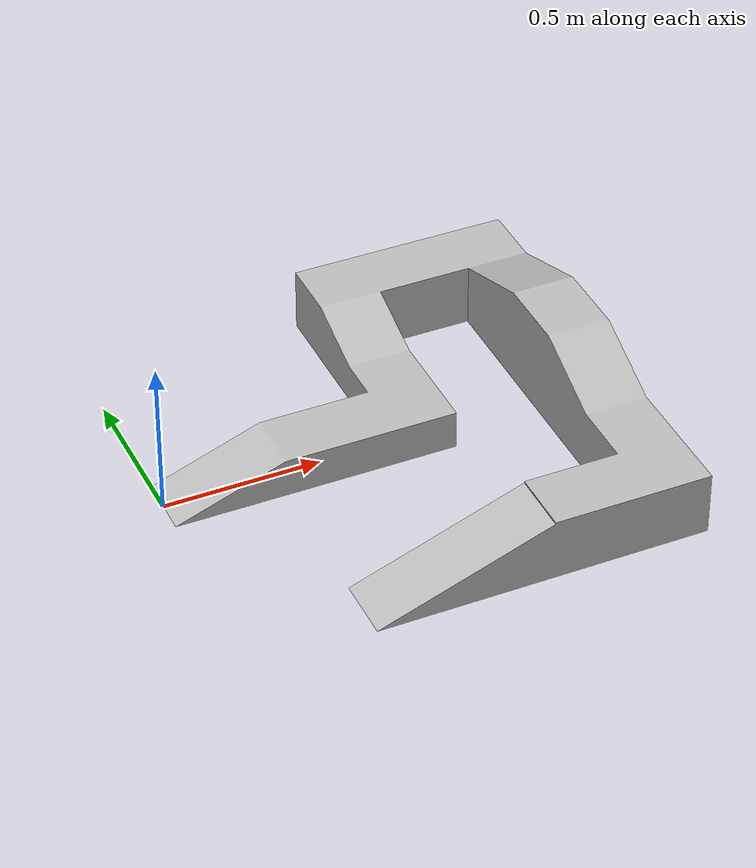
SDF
<?xml version="1.0" ?>
<sdf version="1.5">
  <model name="maze">
    <link name="link">
      <inertial>
        <pose>0 0 0 0 0 0</pose>
        <mass>80.0</mass>
        <inertia>
          <ixx>24.88</ixx>
          <ixy>0</ixy>
          <ixz>0</ixz>
          <iyy>25.73</iyy>
          <iyz>0</iyz>
          <izz>2.48</izz>
        </inertia>
      </inertial>

      <collision name="collision">
        <pose>0 0 0 1.5707963 0 -1.5707963</pose>
        <geometry>
          <mesh>
            <uri>model://maze/meshes/maze.stl</uri>
            <scale>0.005 0.005 0.005</scale>
          </mesh>
        </geometry>
      </collision>

      <visual name="visual">
        <pose>0 0 0 1.5707963 0 -1.5707963</pose>
        <geometry>
          <mesh>
            <uri>model://maze/meshes/maze.stl</uri>
            <scale>0.005 0.005 0.005</scale>
          </mesh>
        </geometry>
      </visual>
    </link>
  </model>
</sdf>
